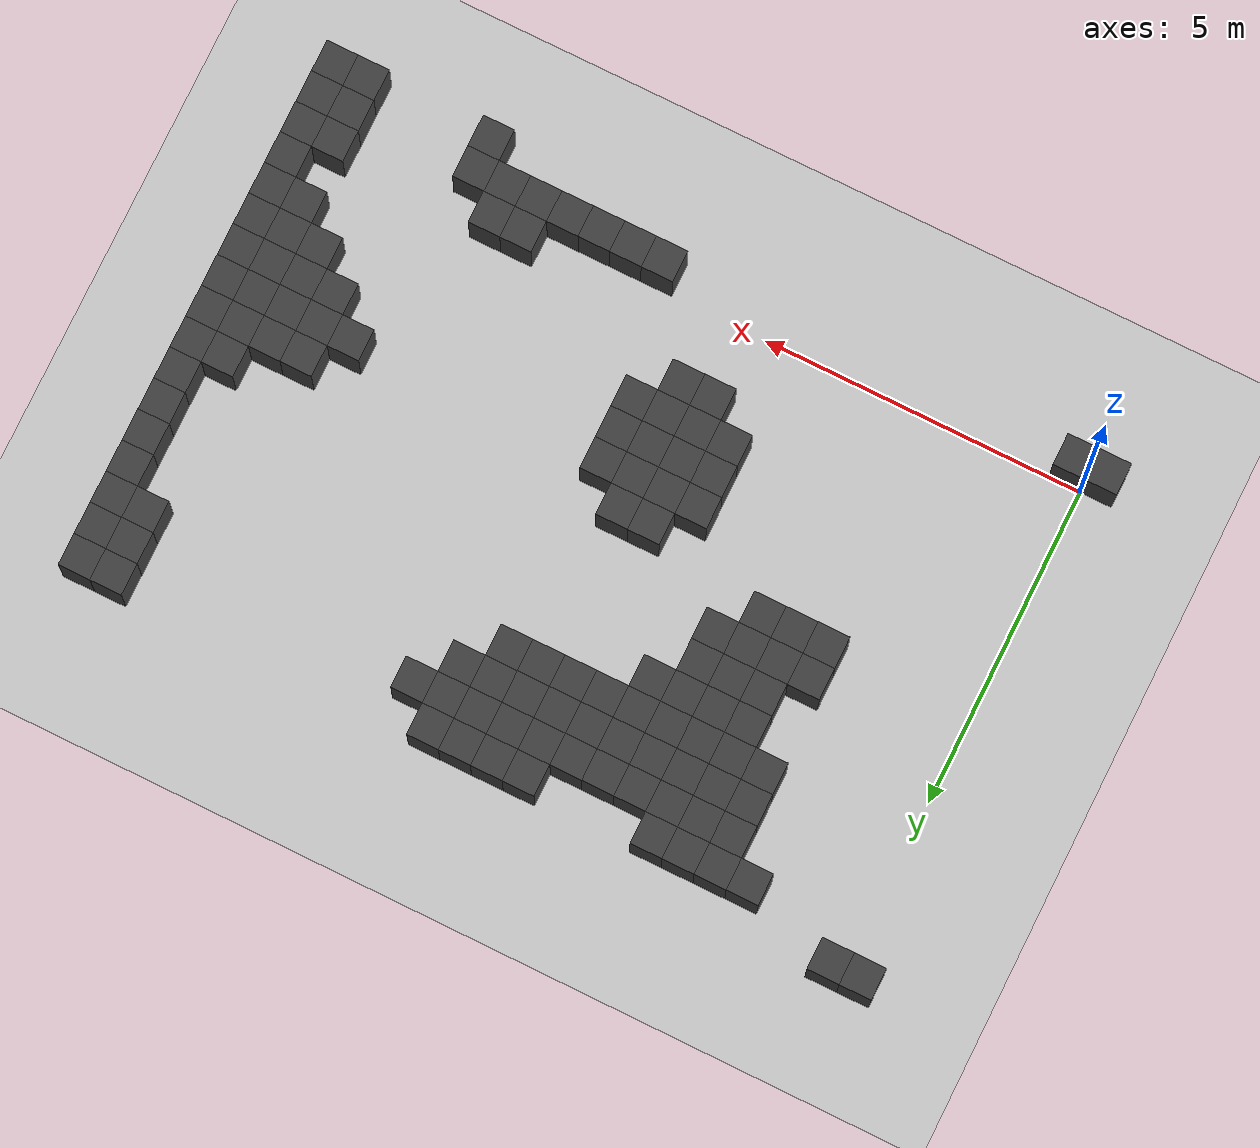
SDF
<sdf version="1.7">
 <world name="map_8074">
  <model name="ground_plane">
   <static>true</static>
   <link name="link">
    <collision name="collision">
     <geometry><plane><normal>0 0 1</normal><size>200 200</size></plane></geometry>
    </collision>
    <visual name="visual">
     <geometry><plane><normal>0 0 1</normal><size>200 200</size></plane></geometry>
     <material><ambient>0.8 0.8 0.8 1</ambient><diffuse>0.8 0.8 0.8 1</diffuse></material>
    </visual>
   </link>
  </model>
  <model name="maze_environment">
   <static>true</static>
   <link name="wall_209">
    <pose>-0.250 7.750 0.500 0 0 0</pose>
    <collision name="col"><geometry><box><size>0.5 0.5 1.0</size></box></geometry></collision>
    <visual name="vis">
     <geometry><box><size>0.5 0.5 1.0</size></box></geometry>
     <material><ambient>0.15 0.15 0.15 1</ambient><diffuse>0.25 0.25 0.25 1</diffuse></material>
    </visual>
   </link>
   <link name="wall_210">
    <pose>0.250 7.750 0.500 0 0 0</pose>
    <collision name="col"><geometry><box><size>0.5 0.5 1.0</size></box></geometry></collision>
    <visual name="vis">
     <geometry><box><size>0.5 0.5 1.0</size></box></geometry>
     <material><ambient>0.15 0.15 0.15 1</ambient><diffuse>0.25 0.25 0.25 1</diffuse></material>
    </visual>
   </link>
   <link name="wall_215">
    <pose>1.750 7.250 0.500 0 0 0</pose>
    <collision name="col"><geometry><box><size>0.5 0.5 1.0</size></box></geometry></collision>
    <visual name="vis">
     <geometry><box><size>0.5 0.5 1.0</size></box></geometry>
     <material><ambient>0.15 0.15 0.15 1</ambient><diffuse>0.25 0.25 0.25 1</diffuse></material>
    </visual>
   </link>
   <link name="wall_216">
    <pose>2.250 7.250 0.500 0 0 0</pose>
    <collision name="col"><geometry><box><size>0.5 0.5 1.0</size></box></geometry></collision>
    <visual name="vis">
     <geometry><box><size>0.5 0.5 1.0</size></box></geometry>
     <material><ambient>0.15 0.15 0.15 1</ambient><diffuse>0.25 0.25 0.25 1</diffuse></material>
    </visual>
   </link>
   <link name="wall_217">
    <pose>2.750 7.250 0.500 0 0 0</pose>
    <collision name="col"><geometry><box><size>0.5 0.5 1.0</size></box></geometry></collision>
    <visual name="vis">
     <geometry><box><size>0.5 0.5 1.0</size></box></geometry>
     <material><ambient>0.15 0.15 0.15 1</ambient><diffuse>0.25 0.25 0.25 1</diffuse></material>
    </visual>
   </link>
   <link name="wall_218">
    <pose>3.250 7.250 0.500 0 0 0</pose>
    <collision name="col"><geometry><box><size>0.5 0.5 1.0</size></box></geometry></collision>
    <visual name="vis">
     <geometry><box><size>0.5 0.5 1.0</size></box></geometry>
     <material><ambient>0.15 0.15 0.15 1</ambient><diffuse>0.25 0.25 0.25 1</diffuse></material>
    </visual>
   </link>
   <link name="wall_219">
    <pose>5.250 7.250 0.500 0 0 0</pose>
    <collision name="col"><geometry><box><size>0.5 0.5 1.0</size></box></geometry></collision>
    <visual name="vis">
     <geometry><box><size>0.5 0.5 1.0</size></box></geometry>
     <material><ambient>0.15 0.15 0.15 1</ambient><diffuse>0.25 0.25 0.25 1</diffuse></material>
    </visual>
   </link>
   <link name="wall_220">
    <pose>5.750 7.250 0.500 0 0 0</pose>
    <collision name="col"><geometry><box><size>0.5 0.5 1.0</size></box></geometry></collision>
    <visual name="vis">
     <geometry><box><size>0.5 0.5 1.0</size></box></geometry>
     <material><ambient>0.15 0.15 0.15 1</ambient><diffuse>0.25 0.25 0.25 1</diffuse></material>
    </visual>
   </link>
   <link name="wall_221">
    <pose>6.250 7.250 0.500 0 0 0</pose>
    <collision name="col"><geometry><box><size>0.5 0.5 1.0</size></box></geometry></collision>
    <visual name="vis">
     <geometry><box><size>0.5 0.5 1.0</size></box></geometry>
     <material><ambient>0.15 0.15 0.15 1</ambient><diffuse>0.25 0.25 0.25 1</diffuse></material>
    </visual>
   </link>
   <link name="wall_222">
    <pose>6.750 7.250 0.500 0 0 0</pose>
    <collision name="col"><geometry><box><size>0.5 0.5 1.0</size></box></geometry></collision>
    <visual name="vis">
     <geometry><box><size>0.5 0.5 1.0</size></box></geometry>
     <material><ambient>0.15 0.15 0.15 1</ambient><diffuse>0.25 0.25 0.25 1</diffuse></material>
    </visual>
   </link>
   <link name="wall_223">
    <pose>11.750 7.250 0.500 0 0 0</pose>
    <collision name="col"><geometry><box><size>0.5 0.5 1.0</size></box></geometry></collision>
    <visual name="vis">
     <geometry><box><size>0.5 0.5 1.0</size></box></geometry>
     <material><ambient>0.15 0.15 0.15 1</ambient><diffuse>0.25 0.25 0.25 1</diffuse></material>
    </visual>
   </link>
   <link name="wall_224">
    <pose>12.250 7.250 0.500 0 0 0</pose>
    <collision name="col"><geometry><box><size>0.5 0.5 1.0</size></box></geometry></collision>
    <visual name="vis">
     <geometry><box><size>0.5 0.5 1.0</size></box></geometry>
     <material><ambient>0.15 0.15 0.15 1</ambient><diffuse>0.25 0.25 0.25 1</diffuse></material>
    </visual>
   </link>
   <link name="wall_226">
    <pose>2.250 6.750 0.500 0 0 0</pose>
    <collision name="col"><geometry><box><size>0.5 0.5 1.0</size></box></geometry></collision>
    <visual name="vis">
     <geometry><box><size>0.5 0.5 1.0</size></box></geometry>
     <material><ambient>0.15 0.15 0.15 1</ambient><diffuse>0.25 0.25 0.25 1</diffuse></material>
    </visual>
   </link>
   <link name="wall_227">
    <pose>2.750 6.750 0.500 0 0 0</pose>
    <collision name="col"><geometry><box><size>0.5 0.5 1.0</size></box></geometry></collision>
    <visual name="vis">
     <geometry><box><size>0.5 0.5 1.0</size></box></geometry>
     <material><ambient>0.15 0.15 0.15 1</ambient><diffuse>0.25 0.25 0.25 1</diffuse></material>
    </visual>
   </link>
   <link name="wall_228">
    <pose>3.250 6.750 0.500 0 0 0</pose>
    <collision name="col"><geometry><box><size>0.5 0.5 1.0</size></box></geometry></collision>
    <visual name="vis">
     <geometry><box><size>0.5 0.5 1.0</size></box></geometry>
     <material><ambient>0.15 0.15 0.15 1</ambient><diffuse>0.25 0.25 0.25 1</diffuse></material>
    </visual>
   </link>
   <link name="wall_229">
    <pose>3.750 6.750 0.500 0 0 0</pose>
    <collision name="col"><geometry><box><size>0.5 0.5 1.0</size></box></geometry></collision>
    <visual name="vis">
     <geometry><box><size>0.5 0.5 1.0</size></box></geometry>
     <material><ambient>0.15 0.15 0.15 1</ambient><diffuse>0.25 0.25 0.25 1</diffuse></material>
    </visual>
   </link>
   <link name="wall_230">
    <pose>4.250 6.750 0.500 0 0 0</pose>
    <collision name="col"><geometry><box><size>0.5 0.5 1.0</size></box></geometry></collision>
    <visual name="vis">
     <geometry><box><size>0.5 0.5 1.0</size></box></geometry>
     <material><ambient>0.15 0.15 0.15 1</ambient><diffuse>0.25 0.25 0.25 1</diffuse></material>
    </visual>
   </link>
   <link name="wall_231">
    <pose>4.750 6.750 0.500 0 0 0</pose>
    <collision name="col"><geometry><box><size>0.5 0.5 1.0</size></box></geometry></collision>
    <visual name="vis">
     <geometry><box><size>0.5 0.5 1.0</size></box></geometry>
     <material><ambient>0.15 0.15 0.15 1</ambient><diffuse>0.25 0.25 0.25 1</diffuse></material>
    </visual>
   </link>
   <link name="wall_232">
    <pose>5.250 6.750 0.500 0 0 0</pose>
    <collision name="col"><geometry><box><size>0.5 0.5 1.0</size></box></geometry></collision>
    <visual name="vis">
     <geometry><box><size>0.5 0.5 1.0</size></box></geometry>
     <material><ambient>0.15 0.15 0.15 1</ambient><diffuse>0.25 0.25 0.25 1</diffuse></material>
    </visual>
   </link>
   <link name="wall_233">
    <pose>5.750 6.750 0.500 0 0 0</pose>
    <collision name="col"><geometry><box><size>0.5 0.5 1.0</size></box></geometry></collision>
    <visual name="vis">
     <geometry><box><size>0.5 0.5 1.0</size></box></geometry>
     <material><ambient>0.15 0.15 0.15 1</ambient><diffuse>0.25 0.25 0.25 1</diffuse></material>
    </visual>
   </link>
   <link name="wall_234">
    <pose>6.250 6.750 0.500 0 0 0</pose>
    <collision name="col"><geometry><box><size>0.5 0.5 1.0</size></box></geometry></collision>
    <visual name="vis">
     <geometry><box><size>0.5 0.5 1.0</size></box></geometry>
     <material><ambient>0.15 0.15 0.15 1</ambient><diffuse>0.25 0.25 0.25 1</diffuse></material>
    </visual>
   </link>
   <link name="wall_235">
    <pose>6.750 6.750 0.500 0 0 0</pose>
    <collision name="col"><geometry><box><size>0.5 0.5 1.0</size></box></geometry></collision>
    <visual name="vis">
     <geometry><box><size>0.5 0.5 1.0</size></box></geometry>
     <material><ambient>0.15 0.15 0.15 1</ambient><diffuse>0.25 0.25 0.25 1</diffuse></material>
    </visual>
   </link>
   <link name="wall_236">
    <pose>7.250 6.750 0.500 0 0 0</pose>
    <collision name="col"><geometry><box><size>0.5 0.5 1.0</size></box></geometry></collision>
    <visual name="vis">
     <geometry><box><size>0.5 0.5 1.0</size></box></geometry>
     <material><ambient>0.15 0.15 0.15 1</ambient><diffuse>0.25 0.25 0.25 1</diffuse></material>
    </visual>
   </link>
   <link name="wall_237">
    <pose>11.750 6.750 0.500 0 0 0</pose>
    <collision name="col"><geometry><box><size>0.5 0.5 1.0</size></box></geometry></collision>
    <visual name="vis">
     <geometry><box><size>0.5 0.5 1.0</size></box></geometry>
     <material><ambient>0.15 0.15 0.15 1</ambient><diffuse>0.25 0.25 0.25 1</diffuse></material>
    </visual>
   </link>
   <link name="wall_238">
    <pose>12.250 6.750 0.500 0 0 0</pose>
    <collision name="col"><geometry><box><size>0.5 0.5 1.0</size></box></geometry></collision>
    <visual name="vis">
     <geometry><box><size>0.5 0.5 1.0</size></box></geometry>
     <material><ambient>0.15 0.15 0.15 1</ambient><diffuse>0.25 0.25 0.25 1</diffuse></material>
    </visual>
   </link>
   <link name="wall_242">
    <pose>2.250 6.250 0.500 0 0 0</pose>
    <collision name="col"><geometry><box><size>0.5 0.5 1.0</size></box></geometry></collision>
    <visual name="vis">
     <geometry><box><size>0.5 0.5 1.0</size></box></geometry>
     <material><ambient>0.15 0.15 0.15 1</ambient><diffuse>0.25 0.25 0.25 1</diffuse></material>
    </visual>
   </link>
   <link name="wall_243">
    <pose>2.750 6.250 0.500 0 0 0</pose>
    <collision name="col"><geometry><box><size>0.5 0.5 1.0</size></box></geometry></collision>
    <visual name="vis">
     <geometry><box><size>0.5 0.5 1.0</size></box></geometry>
     <material><ambient>0.15 0.15 0.15 1</ambient><diffuse>0.25 0.25 0.25 1</diffuse></material>
    </visual>
   </link>
   <link name="wall_244">
    <pose>3.250 6.250 0.500 0 0 0</pose>
    <collision name="col"><geometry><box><size>0.5 0.5 1.0</size></box></geometry></collision>
    <visual name="vis">
     <geometry><box><size>0.5 0.5 1.0</size></box></geometry>
     <material><ambient>0.15 0.15 0.15 1</ambient><diffuse>0.25 0.25 0.25 1</diffuse></material>
    </visual>
   </link>
   <link name="wall_245">
    <pose>3.750 6.250 0.500 0 0 0</pose>
    <collision name="col"><geometry><box><size>0.5 0.5 1.0</size></box></geometry></collision>
    <visual name="vis">
     <geometry><box><size>0.5 0.5 1.0</size></box></geometry>
     <material><ambient>0.15 0.15 0.15 1</ambient><diffuse>0.25 0.25 0.25 1</diffuse></material>
    </visual>
   </link>
   <link name="wall_246">
    <pose>4.250 6.250 0.500 0 0 0</pose>
    <collision name="col"><geometry><box><size>0.5 0.5 1.0</size></box></geometry></collision>
    <visual name="vis">
     <geometry><box><size>0.5 0.5 1.0</size></box></geometry>
     <material><ambient>0.15 0.15 0.15 1</ambient><diffuse>0.25 0.25 0.25 1</diffuse></material>
    </visual>
   </link>
   <link name="wall_247">
    <pose>4.750 6.250 0.500 0 0 0</pose>
    <collision name="col"><geometry><box><size>0.5 0.5 1.0</size></box></geometry></collision>
    <visual name="vis">
     <geometry><box><size>0.5 0.5 1.0</size></box></geometry>
     <material><ambient>0.15 0.15 0.15 1</ambient><diffuse>0.25 0.25 0.25 1</diffuse></material>
    </visual>
   </link>
   <link name="wall_248">
    <pose>5.250 6.250 0.500 0 0 0</pose>
    <collision name="col"><geometry><box><size>0.5 0.5 1.0</size></box></geometry></collision>
    <visual name="vis">
     <geometry><box><size>0.5 0.5 1.0</size></box></geometry>
     <material><ambient>0.15 0.15 0.15 1</ambient><diffuse>0.25 0.25 0.25 1</diffuse></material>
    </visual>
   </link>
   <link name="wall_249">
    <pose>5.750 6.250 0.500 0 0 0</pose>
    <collision name="col"><geometry><box><size>0.5 0.5 1.0</size></box></geometry></collision>
    <visual name="vis">
     <geometry><box><size>0.5 0.5 1.0</size></box></geometry>
     <material><ambient>0.15 0.15 0.15 1</ambient><diffuse>0.25 0.25 0.25 1</diffuse></material>
    </visual>
   </link>
   <link name="wall_250">
    <pose>6.250 6.250 0.500 0 0 0</pose>
    <collision name="col"><geometry><box><size>0.5 0.5 1.0</size></box></geometry></collision>
    <visual name="vis">
     <geometry><box><size>0.5 0.5 1.0</size></box></geometry>
     <material><ambient>0.15 0.15 0.15 1</ambient><diffuse>0.25 0.25 0.25 1</diffuse></material>
    </visual>
   </link>
   <link name="wall_251">
    <pose>6.750 6.250 0.500 0 0 0</pose>
    <collision name="col"><geometry><box><size>0.5 0.5 1.0</size></box></geometry></collision>
    <visual name="vis">
     <geometry><box><size>0.5 0.5 1.0</size></box></geometry>
     <material><ambient>0.15 0.15 0.15 1</ambient><diffuse>0.25 0.25 0.25 1</diffuse></material>
    </visual>
   </link>
   <link name="wall_252">
    <pose>11.750 6.250 0.500 0 0 0</pose>
    <collision name="col"><geometry><box><size>0.5 0.5 1.0</size></box></geometry></collision>
    <visual name="vis">
     <geometry><box><size>0.5 0.5 1.0</size></box></geometry>
     <material><ambient>0.15 0.15 0.15 1</ambient><diffuse>0.25 0.25 0.25 1</diffuse></material>
    </visual>
   </link>
   <link name="wall_253">
    <pose>12.250 6.250 0.500 0 0 0</pose>
    <collision name="col"><geometry><box><size>0.5 0.5 1.0</size></box></geometry></collision>
    <visual name="vis">
     <geometry><box><size>0.5 0.5 1.0</size></box></geometry>
     <material><ambient>0.15 0.15 0.15 1</ambient><diffuse>0.25 0.25 0.25 1</diffuse></material>
    </visual>
   </link>
   <link name="wall_258">
    <pose>2.250 5.750 0.500 0 0 0</pose>
    <collision name="col"><geometry><box><size>0.5 0.5 1.0</size></box></geometry></collision>
    <visual name="vis">
     <geometry><box><size>0.5 0.5 1.0</size></box></geometry>
     <material><ambient>0.15 0.15 0.15 1</ambient><diffuse>0.25 0.25 0.25 1</diffuse></material>
    </visual>
   </link>
   <link name="wall_259">
    <pose>2.750 5.750 0.500 0 0 0</pose>
    <collision name="col"><geometry><box><size>0.5 0.5 1.0</size></box></geometry></collision>
    <visual name="vis">
     <geometry><box><size>0.5 0.5 1.0</size></box></geometry>
     <material><ambient>0.15 0.15 0.15 1</ambient><diffuse>0.25 0.25 0.25 1</diffuse></material>
    </visual>
   </link>
   <link name="wall_260">
    <pose>3.250 5.750 0.500 0 0 0</pose>
    <collision name="col"><geometry><box><size>0.5 0.5 1.0</size></box></geometry></collision>
    <visual name="vis">
     <geometry><box><size>0.5 0.5 1.0</size></box></geometry>
     <material><ambient>0.15 0.15 0.15 1</ambient><diffuse>0.25 0.25 0.25 1</diffuse></material>
    </visual>
   </link>
   <link name="wall_261">
    <pose>3.750 5.750 0.500 0 0 0</pose>
    <collision name="col"><geometry><box><size>0.5 0.5 1.0</size></box></geometry></collision>
    <visual name="vis">
     <geometry><box><size>0.5 0.5 1.0</size></box></geometry>
     <material><ambient>0.15 0.15 0.15 1</ambient><diffuse>0.25 0.25 0.25 1</diffuse></material>
    </visual>
   </link>
   <link name="wall_262">
    <pose>4.250 5.750 0.500 0 0 0</pose>
    <collision name="col"><geometry><box><size>0.5 0.5 1.0</size></box></geometry></collision>
    <visual name="vis">
     <geometry><box><size>0.5 0.5 1.0</size></box></geometry>
     <material><ambient>0.15 0.15 0.15 1</ambient><diffuse>0.25 0.25 0.25 1</diffuse></material>
    </visual>
   </link>
   <link name="wall_263">
    <pose>4.750 5.750 0.500 0 0 0</pose>
    <collision name="col"><geometry><box><size>0.5 0.5 1.0</size></box></geometry></collision>
    <visual name="vis">
     <geometry><box><size>0.5 0.5 1.0</size></box></geometry>
     <material><ambient>0.15 0.15 0.15 1</ambient><diffuse>0.25 0.25 0.25 1</diffuse></material>
    </visual>
   </link>
   <link name="wall_264">
    <pose>5.250 5.750 0.500 0 0 0</pose>
    <collision name="col"><geometry><box><size>0.5 0.5 1.0</size></box></geometry></collision>
    <visual name="vis">
     <geometry><box><size>0.5 0.5 1.0</size></box></geometry>
     <material><ambient>0.15 0.15 0.15 1</ambient><diffuse>0.25 0.25 0.25 1</diffuse></material>
    </visual>
   </link>
   <link name="wall_265">
    <pose>5.750 5.750 0.500 0 0 0</pose>
    <collision name="col"><geometry><box><size>0.5 0.5 1.0</size></box></geometry></collision>
    <visual name="vis">
     <geometry><box><size>0.5 0.5 1.0</size></box></geometry>
     <material><ambient>0.15 0.15 0.15 1</ambient><diffuse>0.25 0.25 0.25 1</diffuse></material>
    </visual>
   </link>
   <link name="wall_266">
    <pose>6.250 5.750 0.500 0 0 0</pose>
    <collision name="col"><geometry><box><size>0.5 0.5 1.0</size></box></geometry></collision>
    <visual name="vis">
     <geometry><box><size>0.5 0.5 1.0</size></box></geometry>
     <material><ambient>0.15 0.15 0.15 1</ambient><diffuse>0.25 0.25 0.25 1</diffuse></material>
    </visual>
   </link>
   <link name="wall_267">
    <pose>12.250 5.750 0.500 0 0 0</pose>
    <collision name="col"><geometry><box><size>0.5 0.5 1.0</size></box></geometry></collision>
    <visual name="vis">
     <geometry><box><size>0.5 0.5 1.0</size></box></geometry>
     <material><ambient>0.15 0.15 0.15 1</ambient><diffuse>0.25 0.25 0.25 1</diffuse></material>
    </visual>
   </link>
   <link name="wall_272">
    <pose>2.750 5.250 0.500 0 0 0</pose>
    <collision name="col"><geometry><box><size>0.5 0.5 1.0</size></box></geometry></collision>
    <visual name="vis">
     <geometry><box><size>0.5 0.5 1.0</size></box></geometry>
     <material><ambient>0.15 0.15 0.15 1</ambient><diffuse>0.25 0.25 0.25 1</diffuse></material>
    </visual>
   </link>
   <link name="wall_273">
    <pose>3.250 5.250 0.500 0 0 0</pose>
    <collision name="col"><geometry><box><size>0.5 0.5 1.0</size></box></geometry></collision>
    <visual name="vis">
     <geometry><box><size>0.5 0.5 1.0</size></box></geometry>
     <material><ambient>0.15 0.15 0.15 1</ambient><diffuse>0.25 0.25 0.25 1</diffuse></material>
    </visual>
   </link>
   <link name="wall_274">
    <pose>3.750 5.250 0.500 0 0 0</pose>
    <collision name="col"><geometry><box><size>0.5 0.5 1.0</size></box></geometry></collision>
    <visual name="vis">
     <geometry><box><size>0.5 0.5 1.0</size></box></geometry>
     <material><ambient>0.15 0.15 0.15 1</ambient><diffuse>0.25 0.25 0.25 1</diffuse></material>
    </visual>
   </link>
   <link name="wall_275">
    <pose>4.250 5.250 0.500 0 0 0</pose>
    <collision name="col"><geometry><box><size>0.5 0.5 1.0</size></box></geometry></collision>
    <visual name="vis">
     <geometry><box><size>0.5 0.5 1.0</size></box></geometry>
     <material><ambient>0.15 0.15 0.15 1</ambient><diffuse>0.25 0.25 0.25 1</diffuse></material>
    </visual>
   </link>
   <link name="wall_276">
    <pose>12.250 5.250 0.500 0 0 0</pose>
    <collision name="col"><geometry><box><size>0.5 0.5 1.0</size></box></geometry></collision>
    <visual name="vis">
     <geometry><box><size>0.5 0.5 1.0</size></box></geometry>
     <material><ambient>0.15 0.15 0.15 1</ambient><diffuse>0.25 0.25 0.25 1</diffuse></material>
    </visual>
   </link>
   <link name="wall_280">
    <pose>2.750 4.750 0.500 0 0 0</pose>
    <collision name="col"><geometry><box><size>0.5 0.5 1.0</size></box></geometry></collision>
    <visual name="vis">
     <geometry><box><size>0.5 0.5 1.0</size></box></geometry>
     <material><ambient>0.15 0.15 0.15 1</ambient><diffuse>0.25 0.25 0.25 1</diffuse></material>
    </visual>
   </link>
   <link name="wall_281">
    <pose>3.250 4.750 0.500 0 0 0</pose>
    <collision name="col"><geometry><box><size>0.5 0.5 1.0</size></box></geometry></collision>
    <visual name="vis">
     <geometry><box><size>0.5 0.5 1.0</size></box></geometry>
     <material><ambient>0.15 0.15 0.15 1</ambient><diffuse>0.25 0.25 0.25 1</diffuse></material>
    </visual>
   </link>
   <link name="wall_282">
    <pose>3.750 4.750 0.500 0 0 0</pose>
    <collision name="col"><geometry><box><size>0.5 0.5 1.0</size></box></geometry></collision>
    <visual name="vis">
     <geometry><box><size>0.5 0.5 1.0</size></box></geometry>
     <material><ambient>0.15 0.15 0.15 1</ambient><diffuse>0.25 0.25 0.25 1</diffuse></material>
    </visual>
   </link>
   <link name="wall_283">
    <pose>12.250 4.750 0.500 0 0 0</pose>
    <collision name="col"><geometry><box><size>0.5 0.5 1.0</size></box></geometry></collision>
    <visual name="vis">
     <geometry><box><size>0.5 0.5 1.0</size></box></geometry>
     <material><ambient>0.15 0.15 0.15 1</ambient><diffuse>0.25 0.25 0.25 1</diffuse></material>
    </visual>
   </link>
   <link name="wall_286">
    <pose>2.250 4.250 0.500 0 0 0</pose>
    <collision name="col"><geometry><box><size>0.5 0.5 1.0</size></box></geometry></collision>
    <visual name="vis">
     <geometry><box><size>0.5 0.5 1.0</size></box></geometry>
     <material><ambient>0.15 0.15 0.15 1</ambient><diffuse>0.25 0.25 0.25 1</diffuse></material>
    </visual>
   </link>
   <link name="wall_287">
    <pose>2.750 4.250 0.500 0 0 0</pose>
    <collision name="col"><geometry><box><size>0.5 0.5 1.0</size></box></geometry></collision>
    <visual name="vis">
     <geometry><box><size>0.5 0.5 1.0</size></box></geometry>
     <material><ambient>0.15 0.15 0.15 1</ambient><diffuse>0.25 0.25 0.25 1</diffuse></material>
    </visual>
   </link>
   <link name="wall_288">
    <pose>3.250 4.250 0.500 0 0 0</pose>
    <collision name="col"><geometry><box><size>0.5 0.5 1.0</size></box></geometry></collision>
    <visual name="vis">
     <geometry><box><size>0.5 0.5 1.0</size></box></geometry>
     <material><ambient>0.15 0.15 0.15 1</ambient><diffuse>0.25 0.25 0.25 1</diffuse></material>
    </visual>
   </link>
   <link name="wall_289">
    <pose>3.750 4.250 0.500 0 0 0</pose>
    <collision name="col"><geometry><box><size>0.5 0.5 1.0</size></box></geometry></collision>
    <visual name="vis">
     <geometry><box><size>0.5 0.5 1.0</size></box></geometry>
     <material><ambient>0.15 0.15 0.15 1</ambient><diffuse>0.25 0.25 0.25 1</diffuse></material>
    </visual>
   </link>
   <link name="wall_290">
    <pose>12.250 4.250 0.500 0 0 0</pose>
    <collision name="col"><geometry><box><size>0.5 0.5 1.0</size></box></geometry></collision>
    <visual name="vis">
     <geometry><box><size>0.5 0.5 1.0</size></box></geometry>
     <material><ambient>0.15 0.15 0.15 1</ambient><diffuse>0.25 0.25 0.25 1</diffuse></material>
    </visual>
   </link>
   <link name="wall_292">
    <pose>2.250 3.750 0.500 0 0 0</pose>
    <collision name="col"><geometry><box><size>0.5 0.5 1.0</size></box></geometry></collision>
    <visual name="vis">
     <geometry><box><size>0.5 0.5 1.0</size></box></geometry>
     <material><ambient>0.15 0.15 0.15 1</ambient><diffuse>0.25 0.25 0.25 1</diffuse></material>
    </visual>
   </link>
   <link name="wall_293">
    <pose>2.750 3.750 0.500 0 0 0</pose>
    <collision name="col"><geometry><box><size>0.5 0.5 1.0</size></box></geometry></collision>
    <visual name="vis">
     <geometry><box><size>0.5 0.5 1.0</size></box></geometry>
     <material><ambient>0.15 0.15 0.15 1</ambient><diffuse>0.25 0.25 0.25 1</diffuse></material>
    </visual>
   </link>
   <link name="wall_294">
    <pose>3.250 3.750 0.500 0 0 0</pose>
    <collision name="col"><geometry><box><size>0.5 0.5 1.0</size></box></geometry></collision>
    <visual name="vis">
     <geometry><box><size>0.5 0.5 1.0</size></box></geometry>
     <material><ambient>0.15 0.15 0.15 1</ambient><diffuse>0.25 0.25 0.25 1</diffuse></material>
    </visual>
   </link>
   <link name="wall_295">
    <pose>11.750 3.750 0.500 0 0 0</pose>
    <collision name="col"><geometry><box><size>0.5 0.5 1.0</size></box></geometry></collision>
    <visual name="vis">
     <geometry><box><size>0.5 0.5 1.0</size></box></geometry>
     <material><ambient>0.15 0.15 0.15 1</ambient><diffuse>0.25 0.25 0.25 1</diffuse></material>
    </visual>
   </link>
   <link name="wall_296">
    <pose>12.250 3.750 0.500 0 0 0</pose>
    <collision name="col"><geometry><box><size>0.5 0.5 1.0</size></box></geometry></collision>
    <visual name="vis">
     <geometry><box><size>0.5 0.5 1.0</size></box></geometry>
     <material><ambient>0.15 0.15 0.15 1</ambient><diffuse>0.25 0.25 0.25 1</diffuse></material>
    </visual>
   </link>
   <link name="wall_298">
    <pose>5.250 3.250 0.500 0 0 0</pose>
    <collision name="col"><geometry><box><size>0.5 0.5 1.0</size></box></geometry></collision>
    <visual name="vis">
     <geometry><box><size>0.5 0.5 1.0</size></box></geometry>
     <material><ambient>0.15 0.15 0.15 1</ambient><diffuse>0.25 0.25 0.25 1</diffuse></material>
    </visual>
   </link>
   <link name="wall_299">
    <pose>5.750 3.250 0.500 0 0 0</pose>
    <collision name="col"><geometry><box><size>0.5 0.5 1.0</size></box></geometry></collision>
    <visual name="vis">
     <geometry><box><size>0.5 0.5 1.0</size></box></geometry>
     <material><ambient>0.15 0.15 0.15 1</ambient><diffuse>0.25 0.25 0.25 1</diffuse></material>
    </visual>
   </link>
   <link name="wall_300">
    <pose>10.750 3.250 0.500 0 0 0</pose>
    <collision name="col"><geometry><box><size>0.5 0.5 1.0</size></box></geometry></collision>
    <visual name="vis">
     <geometry><box><size>0.5 0.5 1.0</size></box></geometry>
     <material><ambient>0.15 0.15 0.15 1</ambient><diffuse>0.25 0.25 0.25 1</diffuse></material>
    </visual>
   </link>
   <link name="wall_301">
    <pose>11.250 3.250 0.500 0 0 0</pose>
    <collision name="col"><geometry><box><size>0.5 0.5 1.0</size></box></geometry></collision>
    <visual name="vis">
     <geometry><box><size>0.5 0.5 1.0</size></box></geometry>
     <material><ambient>0.15 0.15 0.15 1</ambient><diffuse>0.25 0.25 0.25 1</diffuse></material>
    </visual>
   </link>
   <link name="wall_302">
    <pose>11.750 3.250 0.500 0 0 0</pose>
    <collision name="col"><geometry><box><size>0.5 0.5 1.0</size></box></geometry></collision>
    <visual name="vis">
     <geometry><box><size>0.5 0.5 1.0</size></box></geometry>
     <material><ambient>0.15 0.15 0.15 1</ambient><diffuse>0.25 0.25 0.25 1</diffuse></material>
    </visual>
   </link>
   <link name="wall_303">
    <pose>12.250 3.250 0.500 0 0 0</pose>
    <collision name="col"><geometry><box><size>0.5 0.5 1.0</size></box></geometry></collision>
    <visual name="vis">
     <geometry><box><size>0.5 0.5 1.0</size></box></geometry>
     <material><ambient>0.15 0.15 0.15 1</ambient><diffuse>0.25 0.25 0.25 1</diffuse></material>
    </visual>
   </link>
   <link name="wall_306">
    <pose>4.750 2.750 0.500 0 0 0</pose>
    <collision name="col"><geometry><box><size>0.5 0.5 1.0</size></box></geometry></collision>
    <visual name="vis">
     <geometry><box><size>0.5 0.5 1.0</size></box></geometry>
     <material><ambient>0.15 0.15 0.15 1</ambient><diffuse>0.25 0.25 0.25 1</diffuse></material>
    </visual>
   </link>
   <link name="wall_307">
    <pose>5.250 2.750 0.500 0 0 0</pose>
    <collision name="col"><geometry><box><size>0.5 0.5 1.0</size></box></geometry></collision>
    <visual name="vis">
     <geometry><box><size>0.5 0.5 1.0</size></box></geometry>
     <material><ambient>0.15 0.15 0.15 1</ambient><diffuse>0.25 0.25 0.25 1</diffuse></material>
    </visual>
   </link>
   <link name="wall_308">
    <pose>5.750 2.750 0.500 0 0 0</pose>
    <collision name="col"><geometry><box><size>0.5 0.5 1.0</size></box></geometry></collision>
    <visual name="vis">
     <geometry><box><size>0.5 0.5 1.0</size></box></geometry>
     <material><ambient>0.15 0.15 0.15 1</ambient><diffuse>0.25 0.25 0.25 1</diffuse></material>
    </visual>
   </link>
   <link name="wall_309">
    <pose>6.250 2.750 0.500 0 0 0</pose>
    <collision name="col"><geometry><box><size>0.5 0.5 1.0</size></box></geometry></collision>
    <visual name="vis">
     <geometry><box><size>0.5 0.5 1.0</size></box></geometry>
     <material><ambient>0.15 0.15 0.15 1</ambient><diffuse>0.25 0.25 0.25 1</diffuse></material>
    </visual>
   </link>
   <link name="wall_310">
    <pose>10.250 2.750 0.500 0 0 0</pose>
    <collision name="col"><geometry><box><size>0.5 0.5 1.0</size></box></geometry></collision>
    <visual name="vis">
     <geometry><box><size>0.5 0.5 1.0</size></box></geometry>
     <material><ambient>0.15 0.15 0.15 1</ambient><diffuse>0.25 0.25 0.25 1</diffuse></material>
    </visual>
   </link>
   <link name="wall_311">
    <pose>10.750 2.750 0.500 0 0 0</pose>
    <collision name="col"><geometry><box><size>0.5 0.5 1.0</size></box></geometry></collision>
    <visual name="vis">
     <geometry><box><size>0.5 0.5 1.0</size></box></geometry>
     <material><ambient>0.15 0.15 0.15 1</ambient><diffuse>0.25 0.25 0.25 1</diffuse></material>
    </visual>
   </link>
   <link name="wall_312">
    <pose>11.250 2.750 0.500 0 0 0</pose>
    <collision name="col"><geometry><box><size>0.5 0.5 1.0</size></box></geometry></collision>
    <visual name="vis">
     <geometry><box><size>0.5 0.5 1.0</size></box></geometry>
     <material><ambient>0.15 0.15 0.15 1</ambient><diffuse>0.25 0.25 0.25 1</diffuse></material>
    </visual>
   </link>
   <link name="wall_313">
    <pose>11.750 2.750 0.500 0 0 0</pose>
    <collision name="col"><geometry><box><size>0.5 0.5 1.0</size></box></geometry></collision>
    <visual name="vis">
     <geometry><box><size>0.5 0.5 1.0</size></box></geometry>
     <material><ambient>0.15 0.15 0.15 1</ambient><diffuse>0.25 0.25 0.25 1</diffuse></material>
    </visual>
   </link>
   <link name="wall_314">
    <pose>12.250 2.750 0.500 0 0 0</pose>
    <collision name="col"><geometry><box><size>0.5 0.5 1.0</size></box></geometry></collision>
    <visual name="vis">
     <geometry><box><size>0.5 0.5 1.0</size></box></geometry>
     <material><ambient>0.15 0.15 0.15 1</ambient><diffuse>0.25 0.25 0.25 1</diffuse></material>
    </visual>
   </link>
   <link name="wall_317">
    <pose>4.750 2.250 0.500 0 0 0</pose>
    <collision name="col"><geometry><box><size>0.5 0.5 1.0</size></box></geometry></collision>
    <visual name="vis">
     <geometry><box><size>0.5 0.5 1.0</size></box></geometry>
     <material><ambient>0.15 0.15 0.15 1</ambient><diffuse>0.25 0.25 0.25 1</diffuse></material>
    </visual>
   </link>
   <link name="wall_318">
    <pose>5.250 2.250 0.500 0 0 0</pose>
    <collision name="col"><geometry><box><size>0.5 0.5 1.0</size></box></geometry></collision>
    <visual name="vis">
     <geometry><box><size>0.5 0.5 1.0</size></box></geometry>
     <material><ambient>0.15 0.15 0.15 1</ambient><diffuse>0.25 0.25 0.25 1</diffuse></material>
    </visual>
   </link>
   <link name="wall_319">
    <pose>5.750 2.250 0.500 0 0 0</pose>
    <collision name="col"><geometry><box><size>0.5 0.5 1.0</size></box></geometry></collision>
    <visual name="vis">
     <geometry><box><size>0.5 0.5 1.0</size></box></geometry>
     <material><ambient>0.15 0.15 0.15 1</ambient><diffuse>0.25 0.25 0.25 1</diffuse></material>
    </visual>
   </link>
   <link name="wall_320">
    <pose>6.250 2.250 0.500 0 0 0</pose>
    <collision name="col"><geometry><box><size>0.5 0.5 1.0</size></box></geometry></collision>
    <visual name="vis">
     <geometry><box><size>0.5 0.5 1.0</size></box></geometry>
     <material><ambient>0.15 0.15 0.15 1</ambient><diffuse>0.25 0.25 0.25 1</diffuse></material>
    </visual>
   </link>
   <link name="wall_321">
    <pose>10.750 2.250 0.500 0 0 0</pose>
    <collision name="col"><geometry><box><size>0.5 0.5 1.0</size></box></geometry></collision>
    <visual name="vis">
     <geometry><box><size>0.5 0.5 1.0</size></box></geometry>
     <material><ambient>0.15 0.15 0.15 1</ambient><diffuse>0.25 0.25 0.25 1</diffuse></material>
    </visual>
   </link>
   <link name="wall_322">
    <pose>11.250 2.250 0.500 0 0 0</pose>
    <collision name="col"><geometry><box><size>0.5 0.5 1.0</size></box></geometry></collision>
    <visual name="vis">
     <geometry><box><size>0.5 0.5 1.0</size></box></geometry>
     <material><ambient>0.15 0.15 0.15 1</ambient><diffuse>0.25 0.25 0.25 1</diffuse></material>
    </visual>
   </link>
   <link name="wall_323">
    <pose>11.750 2.250 0.500 0 0 0</pose>
    <collision name="col"><geometry><box><size>0.5 0.5 1.0</size></box></geometry></collision>
    <visual name="vis">
     <geometry><box><size>0.5 0.5 1.0</size></box></geometry>
     <material><ambient>0.15 0.15 0.15 1</ambient><diffuse>0.25 0.25 0.25 1</diffuse></material>
    </visual>
   </link>
   <link name="wall_324">
    <pose>12.250 2.250 0.500 0 0 0</pose>
    <collision name="col"><geometry><box><size>0.5 0.5 1.0</size></box></geometry></collision>
    <visual name="vis">
     <geometry><box><size>0.5 0.5 1.0</size></box></geometry>
     <material><ambient>0.15 0.15 0.15 1</ambient><diffuse>0.25 0.25 0.25 1</diffuse></material>
    </visual>
   </link>
   <link name="wall_326">
    <pose>4.750 1.750 0.500 0 0 0</pose>
    <collision name="col"><geometry><box><size>0.5 0.5 1.0</size></box></geometry></collision>
    <visual name="vis">
     <geometry><box><size>0.5 0.5 1.0</size></box></geometry>
     <material><ambient>0.15 0.15 0.15 1</ambient><diffuse>0.25 0.25 0.25 1</diffuse></material>
    </visual>
   </link>
   <link name="wall_327">
    <pose>5.250 1.750 0.500 0 0 0</pose>
    <collision name="col"><geometry><box><size>0.5 0.5 1.0</size></box></geometry></collision>
    <visual name="vis">
     <geometry><box><size>0.5 0.5 1.0</size></box></geometry>
     <material><ambient>0.15 0.15 0.15 1</ambient><diffuse>0.25 0.25 0.25 1</diffuse></material>
    </visual>
   </link>
   <link name="wall_328">
    <pose>5.750 1.750 0.500 0 0 0</pose>
    <collision name="col"><geometry><box><size>0.5 0.5 1.0</size></box></geometry></collision>
    <visual name="vis">
     <geometry><box><size>0.5 0.5 1.0</size></box></geometry>
     <material><ambient>0.15 0.15 0.15 1</ambient><diffuse>0.25 0.25 0.25 1</diffuse></material>
    </visual>
   </link>
   <link name="wall_329">
    <pose>6.250 1.750 0.500 0 0 0</pose>
    <collision name="col"><geometry><box><size>0.5 0.5 1.0</size></box></geometry></collision>
    <visual name="vis">
     <geometry><box><size>0.5 0.5 1.0</size></box></geometry>
     <material><ambient>0.15 0.15 0.15 1</ambient><diffuse>0.25 0.25 0.25 1</diffuse></material>
    </visual>
   </link>
   <link name="wall_330">
    <pose>11.250 1.750 0.500 0 0 0</pose>
    <collision name="col"><geometry><box><size>0.5 0.5 1.0</size></box></geometry></collision>
    <visual name="vis">
     <geometry><box><size>0.5 0.5 1.0</size></box></geometry>
     <material><ambient>0.15 0.15 0.15 1</ambient><diffuse>0.25 0.25 0.25 1</diffuse></material>
    </visual>
   </link>
   <link name="wall_331">
    <pose>11.750 1.750 0.500 0 0 0</pose>
    <collision name="col"><geometry><box><size>0.5 0.5 1.0</size></box></geometry></collision>
    <visual name="vis">
     <geometry><box><size>0.5 0.5 1.0</size></box></geometry>
     <material><ambient>0.15 0.15 0.15 1</ambient><diffuse>0.25 0.25 0.25 1</diffuse></material>
    </visual>
   </link>
   <link name="wall_332">
    <pose>12.250 1.750 0.500 0 0 0</pose>
    <collision name="col"><geometry><box><size>0.5 0.5 1.0</size></box></geometry></collision>
    <visual name="vis">
     <geometry><box><size>0.5 0.5 1.0</size></box></geometry>
     <material><ambient>0.15 0.15 0.15 1</ambient><diffuse>0.25 0.25 0.25 1</diffuse></material>
    </visual>
   </link>
   <link name="wall_334">
    <pose>5.250 1.250 0.500 0 0 0</pose>
    <collision name="col"><geometry><box><size>0.5 0.5 1.0</size></box></geometry></collision>
    <visual name="vis">
     <geometry><box><size>0.5 0.5 1.0</size></box></geometry>
     <material><ambient>0.15 0.15 0.15 1</ambient><diffuse>0.25 0.25 0.25 1</diffuse></material>
    </visual>
   </link>
   <link name="wall_335">
    <pose>5.750 1.250 0.500 0 0 0</pose>
    <collision name="col"><geometry><box><size>0.5 0.5 1.0</size></box></geometry></collision>
    <visual name="vis">
     <geometry><box><size>0.5 0.5 1.0</size></box></geometry>
     <material><ambient>0.15 0.15 0.15 1</ambient><diffuse>0.25 0.25 0.25 1</diffuse></material>
    </visual>
   </link>
   <link name="wall_336">
    <pose>11.750 1.250 0.500 0 0 0</pose>
    <collision name="col"><geometry><box><size>0.5 0.5 1.0</size></box></geometry></collision>
    <visual name="vis">
     <geometry><box><size>0.5 0.5 1.0</size></box></geometry>
     <material><ambient>0.15 0.15 0.15 1</ambient><diffuse>0.25 0.25 0.25 1</diffuse></material>
    </visual>
   </link>
   <link name="wall_337">
    <pose>12.250 1.250 0.500 0 0 0</pose>
    <collision name="col"><geometry><box><size>0.5 0.5 1.0</size></box></geometry></collision>
    <visual name="vis">
     <geometry><box><size>0.5 0.5 1.0</size></box></geometry>
     <material><ambient>0.15 0.15 0.15 1</ambient><diffuse>0.25 0.25 0.25 1</diffuse></material>
    </visual>
   </link>
   <link name="wall_341">
    <pose>12.250 0.750 0.500 0 0 0</pose>
    <collision name="col"><geometry><box><size>0.5 0.5 1.0</size></box></geometry></collision>
    <visual name="vis">
     <geometry><box><size>0.5 0.5 1.0</size></box></geometry>
     <material><ambient>0.15 0.15 0.15 1</ambient><diffuse>0.25 0.25 0.25 1</diffuse></material>
    </visual>
   </link>
   <link name="wall_347">
    <pose>8.750 0.250 0.500 0 0 0</pose>
    <collision name="col"><geometry><box><size>0.5 0.5 1.0</size></box></geometry></collision>
    <visual name="vis">
     <geometry><box><size>0.5 0.5 1.0</size></box></geometry>
     <material><ambient>0.15 0.15 0.15 1</ambient><diffuse>0.25 0.25 0.25 1</diffuse></material>
    </visual>
   </link>
   <link name="wall_348">
    <pose>9.250 0.250 0.500 0 0 0</pose>
    <collision name="col"><geometry><box><size>0.5 0.5 1.0</size></box></geometry></collision>
    <visual name="vis">
     <geometry><box><size>0.5 0.5 1.0</size></box></geometry>
     <material><ambient>0.15 0.15 0.15 1</ambient><diffuse>0.25 0.25 0.25 1</diffuse></material>
    </visual>
   </link>
   <link name="wall_349">
    <pose>11.750 0.250 0.500 0 0 0</pose>
    <collision name="col"><geometry><box><size>0.5 0.5 1.0</size></box></geometry></collision>
    <visual name="vis">
     <geometry><box><size>0.5 0.5 1.0</size></box></geometry>
     <material><ambient>0.15 0.15 0.15 1</ambient><diffuse>0.25 0.25 0.25 1</diffuse></material>
    </visual>
   </link>
   <link name="wall_350">
    <pose>12.250 0.250 0.500 0 0 0</pose>
    <collision name="col"><geometry><box><size>0.5 0.5 1.0</size></box></geometry></collision>
    <visual name="vis">
     <geometry><box><size>0.5 0.5 1.0</size></box></geometry>
     <material><ambient>0.15 0.15 0.15 1</ambient><diffuse>0.25 0.25 0.25 1</diffuse></material>
    </visual>
   </link>
   <link name="wall_361">
    <pose>-0.250 -0.250 0.500 0 0 0</pose>
    <collision name="col"><geometry><box><size>0.5 0.5 1.0</size></box></geometry></collision>
    <visual name="vis">
     <geometry><box><size>0.5 0.5 1.0</size></box></geometry>
     <material><ambient>0.15 0.15 0.15 1</ambient><diffuse>0.25 0.25 0.25 1</diffuse></material>
    </visual>
   </link>
   <link name="wall_362">
    <pose>0.250 -0.250 0.500 0 0 0</pose>
    <collision name="col"><geometry><box><size>0.5 0.5 1.0</size></box></geometry></collision>
    <visual name="vis">
     <geometry><box><size>0.5 0.5 1.0</size></box></geometry>
     <material><ambient>0.15 0.15 0.15 1</ambient><diffuse>0.25 0.25 0.25 1</diffuse></material>
    </visual>
   </link>
   <link name="wall_363">
    <pose>6.750 -0.250 0.500 0 0 0</pose>
    <collision name="col"><geometry><box><size>0.5 0.5 1.0</size></box></geometry></collision>
    <visual name="vis">
     <geometry><box><size>0.5 0.5 1.0</size></box></geometry>
     <material><ambient>0.15 0.15 0.15 1</ambient><diffuse>0.25 0.25 0.25 1</diffuse></material>
    </visual>
   </link>
   <link name="wall_364">
    <pose>7.250 -0.250 0.500 0 0 0</pose>
    <collision name="col"><geometry><box><size>0.5 0.5 1.0</size></box></geometry></collision>
    <visual name="vis">
     <geometry><box><size>0.5 0.5 1.0</size></box></geometry>
     <material><ambient>0.15 0.15 0.15 1</ambient><diffuse>0.25 0.25 0.25 1</diffuse></material>
    </visual>
   </link>
   <link name="wall_365">
    <pose>7.750 -0.250 0.500 0 0 0</pose>
    <collision name="col"><geometry><box><size>0.5 0.5 1.0</size></box></geometry></collision>
    <visual name="vis">
     <geometry><box><size>0.5 0.5 1.0</size></box></geometry>
     <material><ambient>0.15 0.15 0.15 1</ambient><diffuse>0.25 0.25 0.25 1</diffuse></material>
    </visual>
   </link>
   <link name="wall_366">
    <pose>8.250 -0.250 0.500 0 0 0</pose>
    <collision name="col"><geometry><box><size>0.5 0.5 1.0</size></box></geometry></collision>
    <visual name="vis">
     <geometry><box><size>0.5 0.5 1.0</size></box></geometry>
     <material><ambient>0.15 0.15 0.15 1</ambient><diffuse>0.25 0.25 0.25 1</diffuse></material>
    </visual>
   </link>
   <link name="wall_367">
    <pose>8.750 -0.250 0.500 0 0 0</pose>
    <collision name="col"><geometry><box><size>0.5 0.5 1.0</size></box></geometry></collision>
    <visual name="vis">
     <geometry><box><size>0.5 0.5 1.0</size></box></geometry>
     <material><ambient>0.15 0.15 0.15 1</ambient><diffuse>0.25 0.25 0.25 1</diffuse></material>
    </visual>
   </link>
   <link name="wall_368">
    <pose>9.250 -0.250 0.500 0 0 0</pose>
    <collision name="col"><geometry><box><size>0.5 0.5 1.0</size></box></geometry></collision>
    <visual name="vis">
     <geometry><box><size>0.5 0.5 1.0</size></box></geometry>
     <material><ambient>0.15 0.15 0.15 1</ambient><diffuse>0.25 0.25 0.25 1</diffuse></material>
    </visual>
   </link>
   <link name="wall_369">
    <pose>9.750 -0.250 0.500 0 0 0</pose>
    <collision name="col"><geometry><box><size>0.5 0.5 1.0</size></box></geometry></collision>
    <visual name="vis">
     <geometry><box><size>0.5 0.5 1.0</size></box></geometry>
     <material><ambient>0.15 0.15 0.15 1</ambient><diffuse>0.25 0.25 0.25 1</diffuse></material>
    </visual>
   </link>
   <link name="wall_370">
    <pose>11.750 -0.250 0.500 0 0 0</pose>
    <collision name="col"><geometry><box><size>0.5 0.5 1.0</size></box></geometry></collision>
    <visual name="vis">
     <geometry><box><size>0.5 0.5 1.0</size></box></geometry>
     <material><ambient>0.15 0.15 0.15 1</ambient><diffuse>0.25 0.25 0.25 1</diffuse></material>
    </visual>
   </link>
   <link name="wall_371">
    <pose>12.250 -0.250 0.500 0 0 0</pose>
    <collision name="col"><geometry><box><size>0.5 0.5 1.0</size></box></geometry></collision>
    <visual name="vis">
     <geometry><box><size>0.5 0.5 1.0</size></box></geometry>
     <material><ambient>0.15 0.15 0.15 1</ambient><diffuse>0.25 0.25 0.25 1</diffuse></material>
    </visual>
   </link>
   <link name="wall_398">
    <pose>9.750 -0.750 0.500 0 0 0</pose>
    <collision name="col"><geometry><box><size>0.5 0.5 1.0</size></box></geometry></collision>
    <visual name="vis">
     <geometry><box><size>0.5 0.5 1.0</size></box></geometry>
     <material><ambient>0.15 0.15 0.15 1</ambient><diffuse>0.25 0.25 0.25 1</diffuse></material>
    </visual>
   </link>
   <link name="wall_399">
    <pose>11.750 -0.750 0.500 0 0 0</pose>
    <collision name="col"><geometry><box><size>0.5 0.5 1.0</size></box></geometry></collision>
    <visual name="vis">
     <geometry><box><size>0.5 0.5 1.0</size></box></geometry>
     <material><ambient>0.15 0.15 0.15 1</ambient><diffuse>0.25 0.25 0.25 1</diffuse></material>
    </visual>
   </link>
   <link name="wall_400">
    <pose>12.250 -0.750 0.500 0 0 0</pose>
    <collision name="col"><geometry><box><size>0.5 0.5 1.0</size></box></geometry></collision>
    <visual name="vis">
     <geometry><box><size>0.5 0.5 1.0</size></box></geometry>
     <material><ambient>0.15 0.15 0.15 1</ambient><diffuse>0.25 0.25 0.25 1</diffuse></material>
    </visual>
   </link>
  </model>
 </world>
</sdf>
